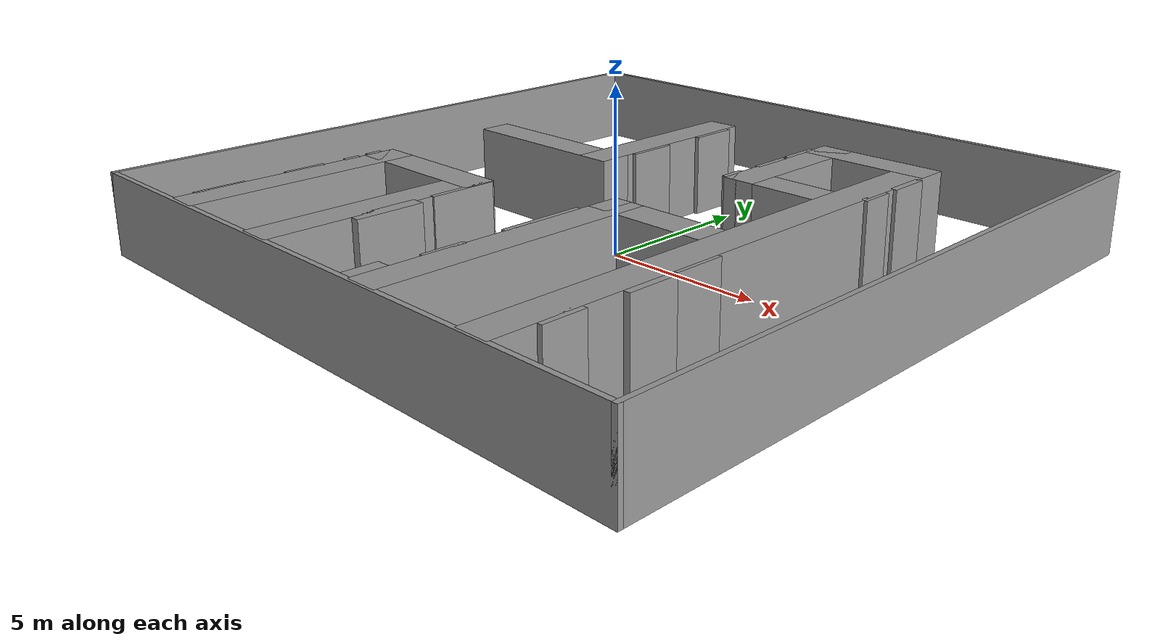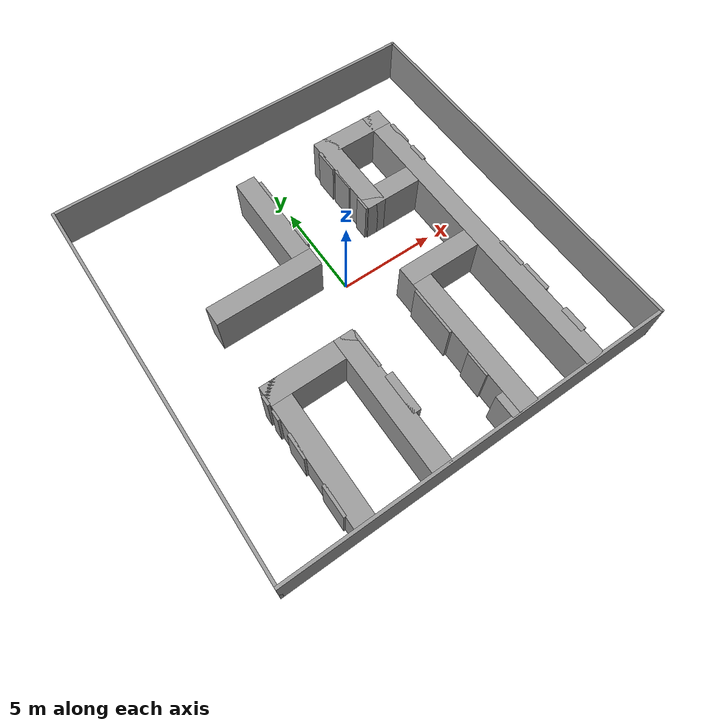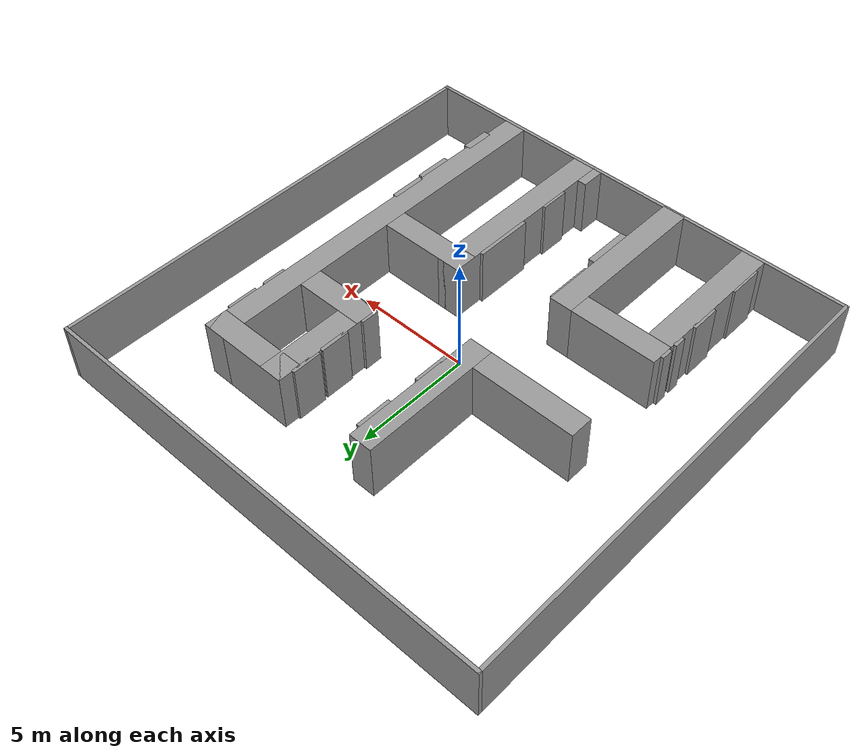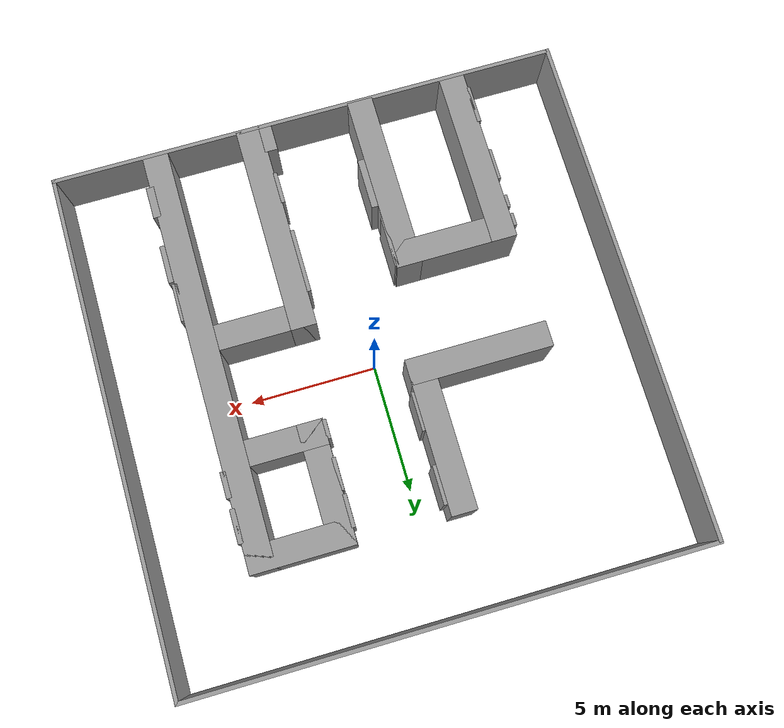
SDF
<?xml version='1.0'?>
<sdf version='1.7'>
  <model name='warehouse'>
    <pose>0 0 0 0 -0 0</pose>
    <link name='Wall_0'>
      <collision name='Wall_0_Collision'>
        <geometry>
          <box>
            <size>20.15 0.15 2.5</size>
          </box>
        </geometry>
        <pose>0 0 1.25 0 -0 0</pose>
      </collision>
      <visual name='Wall_0_Visual'>
        <pose>0 0 1.25 0 -0 0</pose>
        <geometry>
          <box>
            <size>20.15 0.15 2.5</size>
          </box>
        </geometry>
        <material>
          <script>
            <uri>file://media/materials/scripts/gazebo.material</uri>
            <name>Gazebo/Grey</name>
          </script>
          <ambient>1 1 1 1</ambient>
        </material>
        <meta>
          <layer>0</layer>
        </meta>
      </visual>
      <pose>10 0 0 0 -0 -1.5708</pose>
    </link>
    <link name='Wall_10'>
      <collision name='Wall_10_Collision'>
        <geometry>
          <box>
            <size>4 1 2.5</size>
          </box>
        </geometry>
        <pose>0 0 1.25 0 -0 0</pose>
      </collision>
      <visual name='Wall_10_Visual'>
        <pose>0 0 1.25 0 -0 0</pose>
        <geometry>
          <box>
            <size>4 1 2.5</size>
          </box>
        </geometry>
        <material>
          <script>
            <uri>file://media/materials/scripts/gazebo.material</uri>
            <name>Gazebo/Grey</name>
          </script>
          <ambient>1 1 1 1</ambient>
        </material>
        <meta>
          <layer>0</layer>
        </meta>
      </visual>
      <pose>4.5 6 0 0 -0 3.14159</pose>
    </link>
    <link name='Wall_16'>
      <collision name='Wall_16_Collision'>
        <geometry>
          <box>
            <size>4.75 1 2.5</size>
          </box>
        </geometry>
        <pose>0 0 1.25 0 -0 0</pose>
      </collision>
      <visual name='Wall_16_Visual'>
        <pose>0 0 1.25 0 -0 0</pose>
        <geometry>
          <box>
            <size>4.75 1 2.5</size>
          </box>
        </geometry>
        <material>
          <script>
            <uri>file://media/materials/scripts/gazebo.material</uri>
            <name>Gazebo/Grey</name>
          </script>
          <ambient>1 1 1 1</ambient>
        </material>
        <meta>
          <layer>0</layer>
        </meta>
      </visual>
      <pose>3 4.125 0 0 -0 -1.5708</pose>
    </link>
    <link name='Wall_18'>
      <collision name='Wall_18_Collision'>
        <geometry>
          <box>
            <size>3 1 2.5</size>
          </box>
        </geometry>
        <pose>0 0 1.25 0 -0 0</pose>
      </collision>
      <visual name='Wall_18_Visual'>
        <pose>0 0 1.25 0 -0 0</pose>
        <geometry>
          <box>
            <size>3 1 2.5</size>
          </box>
        </geometry>
        <material>
          <script>
            <uri>file://media/materials/scripts/gazebo.material</uri>
            <name>Gazebo/Grey</name>
          </script>
          <ambient>1 1 1 1</ambient>
        </material>
        <meta>
          <layer>0</layer>
        </meta>
      </visual>
      <pose>4 2.25 0 0 -0 0</pose>
    </link>
    <link name='Wall_2'>
      <collision name='Wall_2_Collision'>
        <geometry>
          <box>
            <size>20.15 0.15 2.5</size>
          </box>
        </geometry>
        <pose>0 0 1.25 0 -0 0</pose>
      </collision>
      <visual name='Wall_2_Visual'>
        <pose>0 0 1.25 0 -0 0</pose>
        <geometry>
          <box>
            <size>20.15 0.15 2.5</size>
          </box>
        </geometry>
        <material>
          <script>
            <uri>file://media/materials/scripts/gazebo.material</uri>
            <name>Gazebo/Grey</name>
          </script>
          <ambient>1 1 1 1</ambient>
        </material>
        <meta>
          <layer>0</layer>
        </meta>
      </visual>
      <pose>0 10 0 0 -0 3.14159</pose>
    </link>
    <link name='Wall_20'>
      <collision name='Wall_20_Collision'>
        <geometry>
          <box>
            <size>3.75 1 2.5</size>
          </box>
        </geometry>
        <pose>0 0 1.25 0 -0 0</pose>
      </collision>
      <visual name='Wall_20_Visual'>
        <pose>0 0 1.25 0 -0 0</pose>
        <geometry>
          <box>
            <size>3.75 1 2.5</size>
          </box>
        </geometry>
        <material>
          <script>
            <uri>file://media/materials/scripts/gazebo.material</uri>
            <name>Gazebo/Grey</name>
          </script>
          <ambient>1 1 1 1</ambient>
        </material>
        <meta>
          <layer>0</layer>
        </meta>
      </visual>
      <pose>3.625 -2.25 0 0 -0 0</pose>
    </link>
    <link name='Wall_22'>
      <collision name='Wall_22_Collision'>
        <geometry>
          <box>
            <size>8.25 1 2.5</size>
          </box>
        </geometry>
        <pose>0 0 1.25 0 -0 0</pose>
      </collision>
      <visual name='Wall_22_Visual'>
        <pose>0 0 1.25 0 -0 0</pose>
        <geometry>
          <box>
            <size>8.25 1 2.5</size>
          </box>
        </geometry>
        <material>
          <script>
            <uri>file://media/materials/scripts/gazebo.material</uri>
            <name>Gazebo/Grey</name>
          </script>
          <ambient>1 1 1 1</ambient>
        </material>
        <meta>
          <layer>0</layer>
        </meta>
      </visual>
      <pose>2.25 -5.875 0 0 -0 1.5708</pose>
    </link>
    <link name='Wall_24'>
      <collision name='Wall_24_Collision'>
        <geometry>
          <box>
            <size>6 1 2.5</size>
          </box>
        </geometry>
        <pose>0 0 1.25 0 -0 0</pose>
      </collision>
      <visual name='Wall_24_Visual'>
        <pose>0 0 1.25 0 -0 0</pose>
        <geometry>
          <box>
            <size>6 1 2.5</size>
          </box>
        </geometry>
        <material>
          <script>
            <uri>file://media/materials/scripts/gazebo.material</uri>
            <name>Gazebo/Grey</name>
          </script>
          <ambient>1 1 1 1</ambient>
        </material>
        <meta>
          <layer>0</layer>
        </meta>
      </visual>
      <pose>-1.5 3.5 0 0 -0 -1.5708</pose>
    </link>
    <link name='Wall_26'>
      <collision name='Wall_26_Collision'>
        <geometry>
          <box>
            <size>7 1 2.5</size>
          </box>
        </geometry>
        <pose>0 0 1.25 0 -0 0</pose>
      </collision>
      <visual name='Wall_26_Visual'>
        <pose>0 0 1.25 0 -0 0</pose>
        <geometry>
          <box>
            <size>7 1 2.5</size>
          </box>
        </geometry>
        <material>
          <script>
            <uri>file://media/materials/scripts/gazebo.material</uri>
            <name>Gazebo/Grey</name>
          </script>
          <ambient>1 1 1 1</ambient>
        </material>
        <meta>
          <layer>0</layer>
        </meta>
      </visual>
      <pose>-2.25 -6.5 0 0 -0 -1.5708</pose>
    </link>
    <link name='Wall_28'>
      <collision name='Wall_28_Collision'>
        <geometry>
          <box>
            <size>4.75 1 2.5</size>
          </box>
        </geometry>
        <pose>0 0 1.25 0 -0 0</pose>
      </collision>
      <visual name='Wall_28_Visual'>
        <pose>0 0 1.25 0 -0 0</pose>
        <geometry>
          <box>
            <size>4.75 1 2.5</size>
          </box>
        </geometry>
        <material>
          <script>
            <uri>file://media/materials/scripts/gazebo.material</uri>
            <name>Gazebo/Grey</name>
          </script>
          <ambient>1 1 1 1</ambient>
        </material>
        <meta>
          <layer>0</layer>
        </meta>
      </visual>
      <pose>-4.125 -3.5 0 0 -0 3.14159</pose>
    </link>
    <link name='Wall_30'>
      <collision name='Wall_30_Collision'>
        <geometry>
          <box>
            <size>7 1 2.5</size>
          </box>
        </geometry>
        <pose>0 0 1.25 0 -0 0</pose>
      </collision>
      <visual name='Wall_30_Visual'>
        <pose>0 0 1.25 0 -0 0</pose>
        <geometry>
          <box>
            <size>7 1 2.5</size>
          </box>
        </geometry>
        <material>
          <script>
            <uri>file://media/materials/scripts/gazebo.material</uri>
            <name>Gazebo/Grey</name>
          </script>
          <ambient>1 1 1 1</ambient>
        </material>
        <meta>
          <layer>0</layer>
        </meta>
      </visual>
      <pose>-6 -6.5 0 0 -0 -1.5708</pose>
    </link>
    <link name='Wall_32'>
      <collision name='Wall_32_Collision'>
        <geometry>
          <box>
            <size>5.5 1 2.5</size>
          </box>
        </geometry>
        <pose>0 0 1.25 0 -0 0</pose>
      </collision>
      <visual name='Wall_32_Visual'>
        <pose>0 0 1.25 0 -0 0</pose>
        <geometry>
          <box>
            <size>5.5 1 2.5</size>
          </box>
        </geometry>
        <material>
          <script>
            <uri>file://media/materials/scripts/gazebo.material</uri>
            <name>Gazebo/Grey</name>
          </script>
          <ambient>1 1 1 1</ambient>
        </material>
        <meta>
          <layer>0</layer>
        </meta>
      </visual>
      <pose>-3.75 1 0 0 -0 3.14159</pose>
    </link>
    <link name='Wall_34'>
      <collision name='Wall_34_Collision'>
        <geometry>
          <box>
            <size>1.3 0.2 2.5</size>
          </box>
        </geometry>
        <pose>0 0 1.25 0 -0 0</pose>
      </collision>
      <visual name='Wall_34_Visual'>
        <pose>0 0 1.25 0 -0 0</pose>
        <geometry>
          <box>
            <size>1.3 0.2 2.5</size>
          </box>
        </geometry>
        <material>
          <script>
            <uri>file://media/materials/scripts/gazebo.material</uri>
            <name>Gazebo/Grey</name>
          </script>
          <ambient>1 1 1 1</ambient>
        </material>
        <meta>
          <layer>0</layer>
        </meta>
      </visual>
      <pose>6.51 4.684 0 0 -0 -1.5708</pose>
    </link>
    <link name='Wall_36'>
      <collision name='Wall_36_Collision'>
        <geometry>
          <box>
            <size>1 0.2 2.5</size>
          </box>
        </geometry>
        <pose>0 0 1.25 0 -0 0</pose>
      </collision>
      <visual name='Wall_36_Visual'>
        <pose>0 0 1.25 0 -0 0</pose>
        <geometry>
          <box>
            <size>1 0.2 2.5</size>
          </box>
        </geometry>
        <material>
          <script>
            <uri>file://media/materials/scripts/gazebo.material</uri>
            <name>Gazebo/Grey</name>
          </script>
          <ambient>1 1 1 1</ambient>
        </material>
        <meta>
          <layer>0</layer>
        </meta>
      </visual>
      <pose>6.51 3.149 0 0 -0 -1.5708</pose>
    </link>
    <link name='Wall_38'>
      <collision name='Wall_38_Collision'>
        <geometry>
          <box>
            <size>1.5 0.2 2.5</size>
          </box>
        </geometry>
        <pose>0 0 1.25 0 -0 0</pose>
      </collision>
      <visual name='Wall_38_Visual'>
        <pose>0 0 1.25 0 -0 0</pose>
        <geometry>
          <box>
            <size>1.5 0.2 2.5</size>
          </box>
        </geometry>
        <material>
          <script>
            <uri>file://media/materials/scripts/gazebo.material</uri>
            <name>Gazebo/Grey</name>
          </script>
          <ambient>1 1 1 1</ambient>
        </material>
        <meta>
          <layer>0</layer>
        </meta>
      </visual>
      <pose>6.51 -3.971 0 0 -0 -1.5708</pose>
    </link>
    <link name='Wall_4'>
      <collision name='Wall_4_Collision'>
        <geometry>
          <box>
            <size>20.15 0.15 2.5</size>
          </box>
        </geometry>
        <pose>0 0 1.25 0 -0 0</pose>
      </collision>
      <visual name='Wall_4_Visual'>
        <pose>0 0 1.25 0 -0 0</pose>
        <geometry>
          <box>
            <size>20.15 0.15 2.5</size>
          </box>
        </geometry>
        <material>
          <script>
            <uri>file://media/materials/scripts/gazebo.material</uri>
            <name>Gazebo/Grey</name>
          </script>
          <ambient>1 1 1 1</ambient>
        </material>
        <meta>
          <layer>0</layer>
        </meta>
      </visual>
      <pose>-10 0 0 0 -0 -1.5708</pose>
    </link>
    <link name='Wall_40'>
      <collision name='Wall_40_Collision'>
        <geometry>
          <box>
            <size>1.5 0.2 2.5</size>
          </box>
        </geometry>
        <pose>0 0 1.25 0 -0 0</pose>
      </collision>
      <visual name='Wall_40_Visual'>
        <pose>0 0 1.25 0 -0 0</pose>
        <geometry>
          <box>
            <size>1.5 0.2 2.5</size>
          </box>
        </geometry>
        <material>
          <script>
            <uri>file://media/materials/scripts/gazebo.material</uri>
            <name>Gazebo/Grey</name>
          </script>
          <ambient>1 1 1 1</ambient>
        </material>
        <meta>
          <layer>0</layer>
        </meta>
      </visual>
      <pose>6.6 -5.552 0 0 -0 -1.5708</pose>
    </link>
    <link name='Wall_42'>
      <collision name='Wall_42_Collision'>
        <geometry>
          <box>
            <size>1.25 0.3 2.5</size>
          </box>
        </geometry>
        <pose>0 0 1.25 0 -0 0</pose>
      </collision>
      <visual name='Wall_42_Visual'>
        <pose>0 0 1.25 0 -0 0</pose>
        <geometry>
          <box>
            <size>1.25 0.3 2.5</size>
          </box>
        </geometry>
        <material>
          <script>
            <uri>file://media/materials/scripts/gazebo.material</uri>
            <name>Gazebo/Grey</name>
          </script>
          <ambient>1 1 1 1</ambient>
        </material>
        <meta>
          <layer>0</layer>
        </meta>
      </visual>
      <pose>6.5 -8.106 0 0 -0 -1.5708</pose>
    </link>
    <link name='Wall_44'>
      <collision name='Wall_44_Collision'>
        <geometry>
          <box>
            <size>1.25 0.15 2.5</size>
          </box>
        </geometry>
        <pose>0 0 1.25 0 -0 0</pose>
      </collision>
      <visual name='Wall_44_Visual'>
        <pose>0 0 1.25 0 -0 0</pose>
        <geometry>
          <box>
            <size>1.25 0.15 2.5</size>
          </box>
        </geometry>
        <material>
          <script>
            <uri>file://media/materials/scripts/gazebo.material</uri>
            <name>Gazebo/Grey</name>
          </script>
          <ambient>1 1 1 1</ambient>
        </material>
        <meta>
          <layer>0</layer>
        </meta>
      </visual>
      <pose>2.47736 5.26057 0 0 -0 1.5708</pose>
    </link>
    <link name='Wall_46'>
      <collision name='Wall_46_Collision'>
        <geometry>
          <box>
            <size>1.25 0.15 2.5</size>
          </box>
        </geometry>
        <pose>0 0 1.25 0 -0 0</pose>
      </collision>
      <visual name='Wall_46_Visual'>
        <pose>0 0 1.25 0 -0 0</pose>
        <geometry>
          <box>
            <size>1.25 0.15 2.5</size>
          </box>
        </geometry>
        <material>
          <script>
            <uri>file://media/materials/scripts/gazebo.material</uri>
            <name>Gazebo/Grey</name>
          </script>
          <ambient>1 1 1 1</ambient>
        </material>
        <meta>
          <layer>0</layer>
        </meta>
      </visual>
      <pose>2.50264 3.88239 0 0 -0 -1.5708</pose>
    </link>
    <link name='Wall_48'>
      <collision name='Wall_48_Collision'>
        <geometry>
          <box>
            <size>0.75 0.15 2.5</size>
          </box>
        </geometry>
        <pose>0 0 1.25 0 -0 0</pose>
      </collision>
      <visual name='Wall_48_Visual'>
        <pose>0 0 1.25 0 -0 0</pose>
        <geometry>
          <box>
            <size>0.75 0.15 2.5</size>
          </box>
        </geometry>
        <material>
          <script>
            <uri>file://media/materials/scripts/gazebo.material</uri>
            <name>Gazebo/Grey</name>
          </script>
          <ambient>1 1 1 1</ambient>
        </material>
        <meta>
          <layer>0</layer>
        </meta>
      </visual>
      <pose>2.46343 2.18465 0 0 -0 -1.5708</pose>
    </link>
    <link name='Wall_50'>
      <collision name='Wall_50_Collision'>
        <geometry>
          <box>
            <size>2.5 0.15 2.5</size>
          </box>
        </geometry>
        <pose>0 0 1.25 0 -0 0</pose>
      </collision>
      <visual name='Wall_50_Visual'>
        <pose>0 0 1.25 0 -0 0</pose>
        <geometry>
          <box>
            <size>2.5 0.15 2.5</size>
          </box>
        </geometry>
        <material>
          <script>
            <uri>file://media/materials/scripts/gazebo.material</uri>
            <name>Gazebo/Grey</name>
          </script>
          <ambient>1 1 1 1</ambient>
        </material>
        <meta>
          <layer>0</layer>
        </meta>
      </visual>
      <pose>1.69227 -4.29414 0 0 -0 -1.5708</pose>
    </link>
    <link name='Wall_52'>
      <collision name='Wall_52_Collision'>
        <geometry>
          <box>
            <size>1.25 0.15 2.5</size>
          </box>
        </geometry>
        <pose>0 0 1.25 0 -0 0</pose>
      </collision>
      <visual name='Wall_52_Visual'>
        <pose>0 0 1.25 0 -0 0</pose>
        <geometry>
          <box>
            <size>1.25 0.15 2.5</size>
          </box>
        </geometry>
        <material>
          <script>
            <uri>file://media/materials/scripts/gazebo.material</uri>
            <name>Gazebo/Grey</name>
          </script>
          <ambient>1 1 1 1</ambient>
        </material>
        <meta>
          <layer>0</layer>
        </meta>
      </visual>
      <pose>1.71522 -7.36306 0 0 -0 -1.5708</pose>
    </link>
    <link name='Wall_54'>
      <collision name='Wall_54_Collision'>
        <geometry>
          <box>
            <size>1.10026 0.5 2.5</size>
          </box>
        </geometry>
        <pose>0 0 1.25 0 -0 0</pose>
      </collision>
      <visual name='Wall_54_Visual'>
        <pose>0 0 1.25 0 -0 0</pose>
        <geometry>
          <box>
            <size>1.10026 0.5 2.5</size>
          </box>
        </geometry>
        <material>
          <script>
            <uri>file://media/materials/scripts/gazebo.material</uri>
            <name>Gazebo/Grey</name>
          </script>
          <ambient>1 1 1 1</ambient>
        </material>
        <meta>
          <layer>0</layer>
        </meta>
      </visual>
      <pose>1.607 -9.467 0 0 -0 -1.5708</pose>
    </link>
    <link name='Wall_56'>
      <collision name='Wall_56_Collision'>
        <geometry>
          <box>
            <size>2 0.4 2.5</size>
          </box>
        </geometry>
        <pose>0 0 1.25 0 -0 0</pose>
      </collision>
      <visual name='Wall_56_Visual'>
        <pose>0 0 1.25 0 -0 0</pose>
        <geometry>
          <box>
            <size>2 0.4 2.5</size>
          </box>
        </geometry>
        <material>
          <script>
            <uri>file://media/materials/scripts/gazebo.material</uri>
            <name>Gazebo/Grey</name>
          </script>
          <ambient>1 1 1 1</ambient>
        </material>
        <meta>
          <layer>0</layer>
        </meta>
      </visual>
      <pose>-1.6867 -6.58521 0 0 -0 -1.5708</pose>
    </link>
    <link name='Wall_58'>
      <collision name='Wall_58_Collision'>
        <geometry>
          <box>
            <size>2 0.15 2.5</size>
          </box>
        </geometry>
        <pose>0 0 1.25 0 -0 0</pose>
      </collision>
      <visual name='Wall_58_Visual'>
        <pose>0 0 1.25 0 -0 0</pose>
        <geometry>
          <box>
            <size>2 0.15 2.5</size>
          </box>
        </geometry>
        <material>
          <script>
            <uri>file://media/materials/scripts/gazebo.material</uri>
            <name>Gazebo/Grey</name>
          </script>
          <ambient>1 1 1 1</ambient>
        </material>
        <meta>
          <layer>0</layer>
        </meta>
      </visual>
      <pose>-1.76751 -4.0837 0 0 -0 -1.5708</pose>
    </link>
    <link name='Wall_6'>
      <collision name='Wall_6_Collision'>
        <geometry>
          <box>
            <size>20.15 0.15 2.5</size>
          </box>
        </geometry>
        <pose>0 0 1.25 0 -0 0</pose>
      </collision>
      <visual name='Wall_6_Visual'>
        <pose>0 0 1.25 0 -0 0</pose>
        <geometry>
          <box>
            <size>20.15 0.15 2.5</size>
          </box>
        </geometry>
        <material>
          <script>
            <uri>file://media/materials/scripts/gazebo.material</uri>
            <name>Gazebo/Grey</name>
          </script>
          <ambient>1 1 1 1</ambient>
        </material>
        <meta>
          <layer>0</layer>
        </meta>
      </visual>
      <pose>0 -10 0 0 -0 0</pose>
    </link>
    <link name='Wall_60'>
      <collision name='Wall_60_Collision'>
        <geometry>
          <box>
            <size>1.5 0.15 2.5</size>
          </box>
        </geometry>
        <pose>0 0 1.25 0 -0 0</pose>
      </collision>
      <visual name='Wall_60_Visual'>
        <pose>0 0 1.25 0 -0 0</pose>
        <geometry>
          <box>
            <size>1.5 0.15 2.5</size>
          </box>
        </geometry>
        <material>
          <script>
            <uri>file://media/materials/scripts/gazebo.material</uri>
            <name>Gazebo/Grey</name>
          </script>
          <ambient>1 1 1 1</ambient>
        </material>
        <meta>
          <layer>0</layer>
        </meta>
      </visual>
      <pose>-0.935121 5.28224 0 0 -0 -1.5708</pose>
    </link>
    <link name='Wall_62'>
      <collision name='Wall_62_Collision'>
        <geometry>
          <box>
            <size>1.5 0.15 2.5</size>
          </box>
        </geometry>
        <pose>0 0 1.25 0 -0 0</pose>
      </collision>
      <visual name='Wall_62_Visual'>
        <pose>0 0 1.25 0 -0 0</pose>
        <geometry>
          <box>
            <size>1.5 0.15 2.5</size>
          </box>
        </geometry>
        <material>
          <script>
            <uri>file://media/materials/scripts/gazebo.material</uri>
            <name>Gazebo/Grey</name>
          </script>
          <ambient>1 1 1 1</ambient>
        </material>
        <meta>
          <layer>0</layer>
        </meta>
      </visual>
      <pose>-0.955695 2.48413 0 0 -0 -1.5708</pose>
    </link>
    <link name='Wall_64'>
      <collision name='Wall_64_Collision'>
        <geometry>
          <box>
            <size>1.5 0.15 2.5</size>
          </box>
        </geometry>
        <pose>0 0 1.25 0 -0 0</pose>
      </collision>
      <visual name='Wall_64_Visual'>
        <pose>0 0 1.25 0 -0 0</pose>
        <geometry>
          <box>
            <size>1.5 0.15 2.5</size>
          </box>
        </geometry>
        <material>
          <script>
            <uri>file://media/materials/scripts/gazebo.material</uri>
            <name>Gazebo/Grey</name>
          </script>
          <ambient>1 1 1 1</ambient>
        </material>
        <meta>
          <layer>0</layer>
        </meta>
      </visual>
      <pose>-6.51322 -8.61183 0 0 -0 -1.5708</pose>
    </link>
    <link name='Wall_66'>
      <collision name='Wall_66_Collision'>
        <geometry>
          <box>
            <size>1.25 0.15 2.5</size>
          </box>
        </geometry>
        <pose>0 0 1.25 0 -0 0</pose>
      </collision>
      <visual name='Wall_66_Visual'>
        <pose>0 0 1.25 0 -0 0</pose>
        <geometry>
          <box>
            <size>1.25 0.15 2.5</size>
          </box>
        </geometry>
        <material>
          <script>
            <uri>file://media/materials/scripts/gazebo.material</uri>
            <name>Gazebo/Grey</name>
          </script>
          <ambient>1 1 1 1</ambient>
        </material>
        <meta>
          <layer>0</layer>
        </meta>
      </visual>
      <pose>-6.53266 -5.99103 0 0 -0 -1.5708</pose>
    </link>
    <link name='Wall_68'>
      <collision name='Wall_68_Collision'>
        <geometry>
          <box>
            <size>0.5 0.15 2.5</size>
          </box>
        </geometry>
        <pose>0 0 1.25 0 -0 0</pose>
      </collision>
      <visual name='Wall_68_Visual'>
        <pose>0 0 1.25 0 -0 0</pose>
        <geometry>
          <box>
            <size>0.5 0.15 2.5</size>
          </box>
        </geometry>
        <material>
          <script>
            <uri>file://media/materials/scripts/gazebo.material</uri>
            <name>Gazebo/Grey</name>
          </script>
          <ambient>1 1 1 1</ambient>
        </material>
        <meta>
          <layer>0</layer>
        </meta>
      </visual>
      <pose>-6.54289 -4.41923 0 0 -0 -1.5708</pose>
    </link>
    <link name='Wall_70'>
      <collision name='Wall_70_Collision'>
        <geometry>
          <box>
            <size>0.5 0.15 2.5</size>
          </box>
        </geometry>
        <pose>0 0 1.25 0 -0 0</pose>
      </collision>
      <visual name='Wall_70_Visual'>
        <pose>0 0 1.25 0 -0 0</pose>
        <geometry>
          <box>
            <size>0.5 0.15 2.5</size>
          </box>
        </geometry>
        <material>
          <script>
            <uri>file://media/materials/scripts/gazebo.material</uri>
            <name>Gazebo/Grey</name>
          </script>
          <ambient>1 1 1 1</ambient>
        </material>
        <meta>
          <layer>0</layer>
        </meta>
      </visual>
      <pose>-6.55312 -3.64182 0 0 -0 -1.5708</pose>
    </link>
    <link name='Wall_8'>
      <collision name='Wall_8_Collision'>
        <geometry>
          <box>
            <size>16.5 1 2.5</size>
          </box>
        </geometry>
        <pose>0 0 1.25 0 -0 0</pose>
      </collision>
      <visual name='Wall_8_Visual'>
        <pose>0 0 1.25 0 -0 0</pose>
        <geometry>
          <box>
            <size>16.5 1 2.5</size>
          </box>
        </geometry>
        <material>
          <script>
            <uri>file://media/materials/scripts/gazebo.material</uri>
            <name>Gazebo/Grey</name>
          </script>
          <ambient>1 1 1 1</ambient>
        </material>
        <meta>
          <layer>0</layer>
        </meta>
      </visual>
      <pose>6 -1.75 0 0 -0 -1.5708</pose>
    </link>
    <static>1</static>
  </model>
</sdf>
